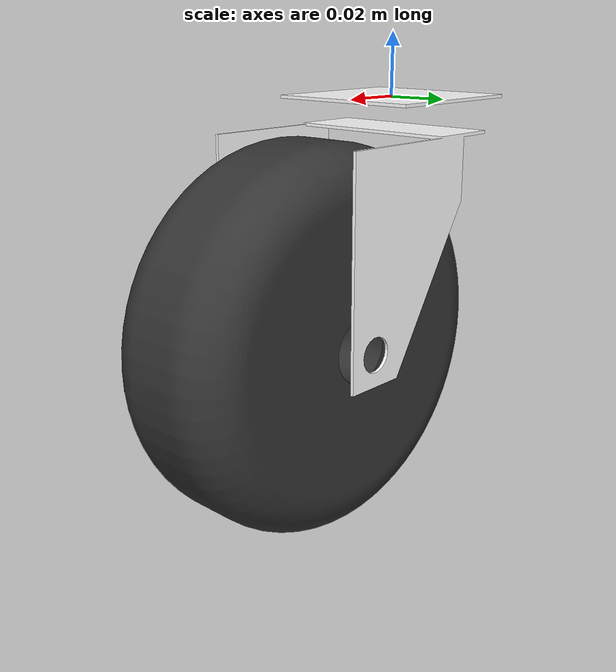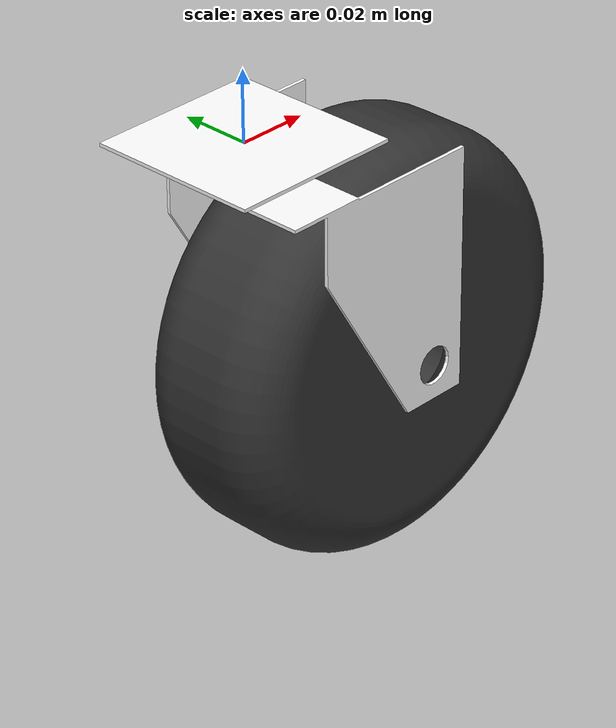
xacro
<?xml version="1.0" encoding="utf-8"?>
<robot xmlns:xacro="http://www.ros.org/wiki/xacro" name="castor">
	<xacro:include filename="$(find transbot_description)/urdf/mobilebase_diffdrive_6wheels_ltype_csuspp/castor.urdf.xacro"></xacro:include>
	<xacro:castor prefix="" name=""></xacro:castor>
</robot>

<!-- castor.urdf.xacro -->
<robot xmlns:xacro="http://www.ros.org/wiki/xacro" name="castor">
	<xacro:macro name="castor" params="prefix='' name='castor' suffix=''">
		<link name="${prefix}${name}${suffix}_">
			<inertial density="7850">
				<origin xyz="0.0 0.0 0.0" rpy="0 0 0"></origin>
				<mass value="0.010000000960038355"></mass>
				<inertia ixx="8.334167593144114e-06" ixy="-0.0" ixz="-0.0" iyy="8.334167593144114e-06" iyz="-0.0" izz="1.666666851936801e-05"></inertia>
			</inertial>
			<visual>
				<geometry>
					<mesh filename="package://transbot_description/meshes/mobilebase_diffdrive_6wheels_ltype_csuspp/castor/_.stl" scale="1e-3 1e-3 1e-3"></mesh>
				</geometry>
				<material name="">
					<color rgba="1 1 1 1"></color>
				</material>
			</visual>
			<collision>
				<geometry>
					<mesh filename="package://transbot_description/meshes/mobilebase_diffdrive_6wheels_ltype_csuspp/castor/_.stl" scale="1e-3 1e-3 1e-3"></mesh>
				</geometry>
			</collision>
		</link>
		<xacro:include filename="$(find transbot_description)/urdf/mobilebase_diffdrive_6wheels_ltype_csuspp/castor/arm.urdf.xacro"></xacro:include>
		<xacro:include filename="$(find transbot_description)/urdf/mobilebase_diffdrive_6wheels_ltype_csuspp/castor/wheel.urdf.xacro"></xacro:include>
		<joint name="j/${prefix}${name}${suffix}arm" type="continuous">
			<origin xyz="0.0 0.0 -0.01" rpy="0.0 0.0 0.0"></origin>
			<parent link="${prefix}${name}${suffix}_"></parent>
			<child link="${prefix}${name}${suffix}arm"></child>
			<axis xyz="0 0 1"></axis>
		</joint>
		<joint name="j/${prefix}${name}${suffix}wheel" type="continuous">
			<origin xyz="0.04 0.0 -0.06" rpy="1.5707963267948966 0.0 0.0"></origin>
			<parent link="${prefix}${name}${suffix}arm"></parent>
			<child link="${prefix}${name}${suffix}wheel"></child>
			<axis xyz="0 0 1"></axis>
		</joint>
		<xacro:arm prefix="${prefix}${name}${suffix}" suffix=""></xacro:arm>
		<xacro:wheel prefix="${prefix}${name}${suffix}" suffix=""></xacro:wheel>
	</xacro:macro>
</robot>

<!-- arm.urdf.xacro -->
<robot xmlns:xacro="http://www.ros.org/wiki/xacro" name="arm">
	<xacro:macro name="arm" params="prefix='' name='arm' suffix=''">
		<link name="${prefix}${name}${suffix}">
			<inertial density="7850">
				<origin xyz="0.023216223476559487 -5.499152560757377e-09 -0.023419604856066874" rpy="0 0 0"></origin>
				<mass value="0.006568149425826657"></mass>
				<inertia ixx="7.06487723744569e-06" ixy="-7.469593134069236e-13" ixz="1.2443357829905416e-06" iyy="4.505877976838242e-06" iyz="-2.7216179554656136e-12" izz="6.2024474186650775e-06"></inertia>
			</inertial>
			<visual>
				<geometry>
					<mesh filename="package://transbot_description/meshes/mobilebase_diffdrive_6wheels_ltype_csuspp/castor/arm.stl" scale="1e-3 1e-3 1e-3"></mesh>
				</geometry>
				<material name="">
					<color rgba="1 1 1 1"></color>
				</material>
			</visual>
			<collision>
				<geometry>
					<mesh filename="package://transbot_description/meshes/mobilebase_diffdrive_6wheels_ltype_csuspp/castor/arm.stl" scale="1e-3 1e-3 1e-3"></mesh>
				</geometry>
			</collision>
		</link>
	</xacro:macro>
</robot>

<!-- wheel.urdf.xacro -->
<robot xmlns:xacro="http://www.ros.org/wiki/xacro" name="wheel">
	<xacro:macro name="wheel" params="prefix='' name='wheel' suffix=''">
		<link name="${prefix}${name}${suffix}">
			<inertial density="2500">
				<origin xyz="-2.269997773998308e-10 4.981912077029785e-09 1.3228093841629953e-09" rpy="0 0 0"></origin>
				<mass value="0.4594143247231841"></mass>
				<inertia ixx="0.0004709492562445302" ixy="2.9647001926053876e-11" ixz="2.766305565072593e-12" iyy="0.00047094983225785266" iyz="-6.898645291669016e-12" izz="0.0008008165423234345"></inertia>
			</inertial>
			<visual>
				<geometry>
					<mesh filename="package://transbot_description/meshes/mobilebase_diffdrive_6wheels_ltype_csuspp/castor/wheel.stl" scale="1e-3 1e-3 1e-3"></mesh>
				</geometry>
				<material name="">
					<color rgba="0.2 0.2 0.2 1"></color>
				</material>
			</visual>
			<collision>
				<geometry>
					<mesh filename="package://transbot_description/meshes/mobilebase_diffdrive_6wheels_ltype_csuspp/castor/wheel.stl" scale="1e-3 1e-3 1e-3"></mesh>
				</geometry>
			</collision>
		</link>
	</xacro:macro>
</robot>
